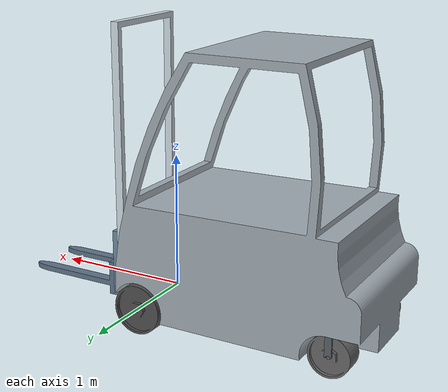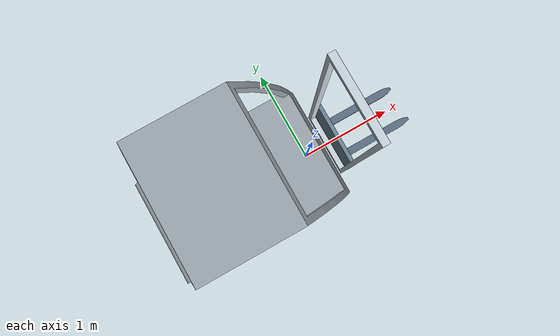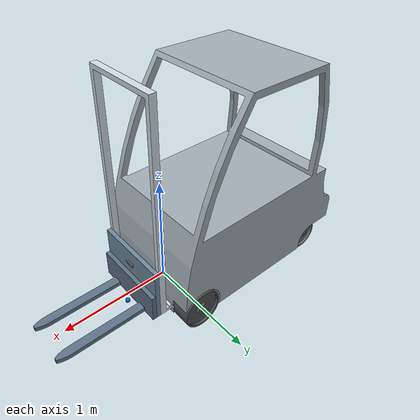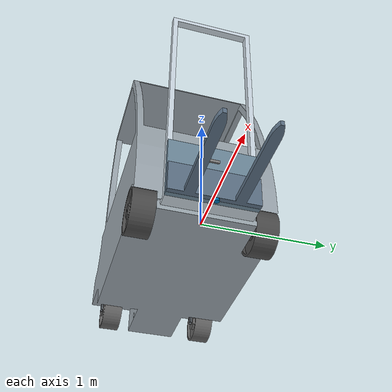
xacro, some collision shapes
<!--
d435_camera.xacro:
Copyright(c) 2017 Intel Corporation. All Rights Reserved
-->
<?xml version="1.0" ?>
<robot name="RX20_16" xmlns:xacro="http://www.ros.org/wiki/xacro">

  <xacro:property name="deg_to_rad" value="0.01745329251994329577"/>

  <!-- Robot base dimensions -->
  <xacro:property name="base_length" value="-1.839" /> <!--fake 0.5 real 0.139-->
  <xacro:property name="base_width" value="1.1" /> <!--fake 0.3 real 0.139-->
  <xacro:property name="base_height" value="0.835" /> <!--fake 0.1 real 0.139-->
  <xacro:property name="base_mass" value="10" />

  <!-- Wheel link dimensions -->
  <xacro:property name="wheel_radius" value="0.10" /> <!--fake 0.1 real 0.139-->
  <xacro:property name="wheel_thickness" value=".13" /> <!--fake 0.08 real 0.139-->
  <xacro:property name="wheel_mass" value="1" />

  <!-- Steering link dimensions -->
  <xacro:property name="steer_radius" value="0.05" />
  <xacro:property name="steer_height" value="0.12" />
  <xacro:property name="steer_thickness" value="0.02" />
  <xacro:property name="steer_mass" value="1" />

  <!-- Axle positions -->
  <xacro:property name="axle_offset" value="0.036175" /> <!--fake 0.05 real 0.035-->
  <xacro:property name="steer_offset" value="0.0254" /> <!--fake 0.02 real 0.139-->

    <xacro:include filename="$(find forklift_simulator)/urdf/RX20_16/inertia.xacro" />
    <xacro:include filename="$(find forklift_simulator)/urdf/RX20_16/base.xacro" />
    <xacro:include filename="$(find forklift_simulator)/urdf/RX20_16/nav_lidar.xacro" />
    <xacro:include filename="$(find forklift_simulator)/urdf/RX20_16/detection_lidar.xacro" />
    <xacro:include filename="$(find forklift_simulator)/urdf/RX20_16/d435_camera.xacro" />
    <xacro:include filename="$(find forklift_simulator)/urdf/RX20_16/inertials.xacro" />
    <xacro:include filename="$(find forklift_simulator)/urdf/RX20_16/loading_forklift_joints.xacro" />
    <xacro:include filename="$(find forklift_simulator)/urdf/RX20_16/rear_steer.xacro" />
    <xacro:include filename="$(find forklift_simulator)/urdf/RX20_16/steer_wheels.xacro" />

    <xacro:camera_d435 name="camera" topics_ns="camera" parent="lift_link" publish_pointcloud="true"> <origin xyz="0.02 0 0.1" rpy="0 0 0" /> </xacro:camera_d435>

    <xacro:nav_lidar name="back"  x="0.4"  y="0.0" z="-0.08" roll="0.0" pitch="0.0" yaw="0" resolution="1"/>

 <xacro:rear_steer
    name="rear"
    parent="base"
    steer_radius="${steer_radius}"
    steer_thickness="${steer_thickness}"
    steer_mass="${steer_mass}"
    base_length="${base_length}"
    base_width="${base_width}"
    axle_offset="${axle_offset}"
    steer_height="${steer_height-.06}">
</xacro:rear_steer>
 <xacro:rear_wheel
    name="front"
    parent="base"
    wheel_radius="${wheel_radius/4}"
    wheel_thickness="${base_width}"
    wheel_mass="${wheel_mass}">
    <origin xyz="0 0 0" rpy="${-90 * deg_to_rad} 0 0"/>
  </xacro:rear_wheel>

   <xacro:steer_wheel name="rear_left"  x_steering="-1.429" y_steering="0.404" z_steering="0.06" radius="0.150" width="0.15" flip="-1" />
   <xacro:steer_wheel name="rear_right" x_steering="-1.429" y_steering="-0.404" z_steering="0.06" radius="0.150" width="0.15" flip="-1" />

    <xacro:front_wheel_lr name="front_right" parent = "base" x_loading="0.0" y_loading="-0.466" z_loading="0.0" radius="0.18" width="0.18" flip="-1" />
    <xacro:front_wheel_lr name="front_left" parent = "base" x_loading="0.0" y_loading="0.466" z_loading="0.0" radius="0.18" width="0.18" flip="-1" />

</robot>

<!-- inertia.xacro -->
<robot xmlns:xacro="http://www.ros.org/wiki/xacro">

    <xacro:macro  name="cylinder_inertia" params="mass r l">
      <inertia  ixx="${mass*(3*r*r+l*l)/12}" ixy = "0" ixz = "0"
                iyy="${mass*(3*r*r+l*l)/12}" iyz = "0"
                izz="${mass*(r*r)/2}" />
    </xacro:macro >

    <xacro:macro name="box_inertia" params="mass x y z">
      <inertia  ixx="${mass*(y*y+z*z)/12}" ixy = "0" ixz = "0"
                iyy="${mass*(x*x+z*z)/12}" iyz = "0"
                izz="${mass*(x*x+y*y)/12}"/>
    </xacro:macro>

    <xacro:macro name="sphere_inertia" params="mass r">
      <inertia
          ixx="${2*mass*r*r/5}" ixy = "0" ixz = "0"
          iyy="${2*mass*r*r/5}" iyz = "0"
          izz="${2*mass*r*r/5}"/>
    </xacro:macro>

</robot>

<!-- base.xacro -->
<robot name="RX20_16" xmlns:xacro="http://www.ros.org/wiki/xacro">

  <link name="base_footprint"/>
  <link name="base_scan"/>

  <link name="base_link">
   <inertial>
    <origin xyz="-0.8 0 0.417" rpy="0 0 0"/>
     <xacro:box_inertia mass="10" x="1.843" y="1.1" z="0.835"/>
    <mass value= "10"/>
    </inertial>

    <collision>
      <origin rpy="0 0 0" xyz="0 0 0"/>
      <geometry>
        <mesh
          filename="$(find forklift_simulator)/urdf/RX20_16/meshes/body.dae" />
      </geometry>
    </collision>
    <visual>
      <origin rpy="0 0 0" xyz="0 0 0"/>
      <geometry>
        <mesh
        filename="$(find forklift_simulator)/urdf/RX20_16/meshes/body.dae" />
      </geometry>
    </visual>
  </link>

  <link name="imu_link"/>
  <joint name="imu_joint" type="fixed">
    <parent link="base_link"/>
    <child link="imu_link"/>
    <origin xyz="0.0 0 0.068" rpy="0 0 0"/>
  </joint>

  <joint name="base_joint" type="fixed">
    <parent link="base_footprint" />
    <child link="base_link" />
    <origin xyz="0.0 0 0.0" rpy="0 0 0" />
    <axis xyz="0 0 1" />
  </joint>

  <joint name="scan" type="fixed">
    <parent link="base_footprint" />
    <child link="base_scan" />
    <origin xyz="0.0 0 0.0" rpy="0 0 0" />
    <axis xyz="0 0 1" />
  </joint>

</robot>

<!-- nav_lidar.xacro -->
<robot name="RX20_16" xmlns:xacro="http://www.ros.org/wiki/xacro">

<xacro:macro name="nav_lidar" params="name x y z roll pitch yaw resolution">

  <link name="${name}_nav_lidar">
      <inertial>
      <origin xyz="0 0 0" rpy="0 0 0"/>
      <xacro:cylinder_inertia mass="0.01" r="0.02" l="0.02" />
      <mass value= "0.01"/>
      </inertial>

      <collision>
      <origin xyz="0 0 0" rpy="0 0 0"/>
      <geometry>
            <cylinder radius="0.02" length="0.02"/>
      </geometry>
      </collision>

      <visual>
      <origin xyz="0 0 0" rpy="0 0 0"/>
      <geometry>
      <cylinder radius="0.02" length="0.02"/>
      </geometry>
      </visual>
  </link>

  <gazebo reference="${name}_nav_lidar"  >
      <sensor name="/scan_${name}_nav_lidar_sensor" type="ray">
        <pose>0 0 0 0 0   0</pose>
        <visualize>false</visualize>
        <update_rate>20</update_rate>
          <ray>
          <scan>
            <horizontal>
              <samples>1440</samples>
                <resolution>1</resolution>
              <min_angle>0</min_angle>
                <max_angle>6.28</max_angle>
            </horizontal>
          </scan>
            <range>
            <min>0.10</min>
            <max>10.0</max>
              <resolution>0.01</resolution>
          </range>
          <noise>
              <type>gaussian</type>
            <mean>0.0</mean>
            <stddev>0.001</stddev>
            </noise>
        </ray>
        <plugin filename="libgazebo_ros_laser.so"   name="gazebo_ros_head_hokuyo_controller">
          <topicName>/RX20_16/scan</topicName>
            <frameName>${name}_nav_lidar</frameName>
            _
          <output_type>sensor_msgs/LaserScan</output_type>
        </plugin>
      </sensor>
    </gazebo>

  <joint name="lidar_joint_${name}" type="fixed">

    <parent link="base_scan" />
    <child link="${name}_nav_lidar" />
    <origin xyz="${x} ${y} ${z}" rpy="${roll} ${pitch} ${yaw}" />
    <axis xyz="0 0 1" />
  </joint>

 </xacro:macro>

</robot>

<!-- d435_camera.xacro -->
<robot name="camera_d435" xmlns:xacro="http://ros.org/wiki/xacro">
  <!--File includes-->
  <xacro:include filename="$(find forklift_simulator)/urdf/RX20_16/d435_sensor.xacro"/>

  <xacro:macro name="camera_d435" params="name:=camera topics_ns:=camera parent *origin publish_pointcloud:=true">
    <xacro:property name="M_PI" value="3.1415926535897931" />

    <!-- The following values are approximate, and the camera node
     publishing TF values with actual calibrated camera extrinsic values -->
    <xacro:property name="d435_cam_depth_to_left_ir_offset" value="0.0"/>
    <xacro:property name="d435_cam_depth_to_right_ir_offset" value="-0.050"/>
    <xacro:property name="d435_cam_depth_to_color_offset" value="0.015"/>

    <!-- The following values model the aluminum peripherial case for the
    D435 camera, with the camera joint represented by the actual
    peripherial camera tripod mount -->
    <xacro:property name="d435_cam_width" value="0.090"/>
    <xacro:property name="d435_cam_height" value="0.025"/>
    <xacro:property name="d435_cam_depth" value="0.02505"/>
    <xacro:property name="d435_cam_mount_from_center_offset" value="0.0149"/>

    <!-- The following offset is relative the the physical D435 camera peripherial
    camera tripod mount -->
    <xacro:property name="d435_cam_depth_px" value="${d435_cam_mount_from_center_offset}"/>
    <xacro:property name="d435_cam_depth_py" value="0.0175"/>
    <xacro:property name="d435_cam_depth_pz" value="${d435_cam_height/2}"/>

    <material name="${name}_aluminum">
    <color rgba="0.5 0.5 0.5 1"/>
    </material>

    <!-- camera body, with origin at bottom screw mount -->
    <joint name="${name}_joint" type="fixed">
      <xacro:insert_block name="origin" />
      <parent link="${parent}"/>
      <child link="${name}_bottom_screw_frame" />
    </joint>
    <link name="${name}_bottom_screw_frame"/>

    <joint name="${name}_link_joint" type="fixed">
      <origin xyz="0 ${d435_cam_depth_py} ${d435_cam_depth_pz}" rpy="0 0 0"/>
      <parent link="${name}_bottom_screw_frame"/>
      <child link="${name}_link" />
    </joint>

    <link name="${name}_link">
      <visual>
      <origin xyz="${d435_cam_mount_from_center_offset} ${-d435_cam_depth_py} 0" rpy="${M_PI/2} 0 ${M_PI/2}"/>
        <geometry>
          <mesh filename="package://forklift_simulator/urdf/RX20_16/meshes/d435.dae" />
        </geometry>
        <material name="${name}_aluminum"/>
      </visual>
      <collision>
        <origin xyz="0 ${-d435_cam_depth_py} 0" rpy="0 0 0"/>
        <geometry>
        <box size="${d435_cam_depth} ${d435_cam_width} ${d435_cam_height}"/>
        </geometry>
      </collision>
      <inertial>
        <!-- The following are not reliable values, and should not be used for modeling -->
        <mass value="0.564" />
        <origin xyz="0 0 0" />
        <inertia ixx="0.003881243" ixy="0.0" ixz="0.0" iyy="0.000498940" iyz="0.0" izz="0.003879257" />
      </inertial>
    </link>

    <!-- camera depth joints and links -->
    <joint name="${name}_depth_joint" type="fixed">
      <origin xyz="0 0 0" rpy="0 0 0"/>
      <parent link="${name}_link"/>
      <child link="${name}_depth_frame" />
    </joint>
    <link name="${name}_depth_frame"/>

    <joint name="${name}_depth_optical_joint" type="fixed">
      <origin xyz="0 0 0" rpy="${-M_PI/2} 0 ${-M_PI/2}" />
      <parent link="${name}_depth_frame" />
      <child link="${name}_depth_optical_frame" />
    </joint>
    <link name="${name}_depth_optical_frame"/>

    <!-- camera left IR joints and links -->
    <joint name="${name}_left_ir_joint" type="fixed">
      <origin xyz="0 ${d435_cam_depth_to_left_ir_offset} 0" rpy="0 0 0" />
      <parent link="${name}_depth_frame" />
      <child link="${name}_left_ir_frame" />
    </joint>
    <link name="${name}_left_ir_frame"/>

    <joint name="${name}_left_ir_optical_joint" type="fixed">
      <origin xyz="0 0 0" rpy="${-M_PI/2} 0 ${-M_PI/2}" />
      <parent link="${name}_left_ir_frame" />
      <child link="${name}_left_ir_optical_frame" />
    </joint>
    <link name="${name}_left_ir_optical_frame"/>

    <!-- camera right IR joints and links -->
    <joint name="${name}_right_ir_joint" type="fixed">
      <origin xyz="0 ${d435_cam_depth_to_right_ir_offset} 0" rpy="0 0 0" />
      <parent link="${name}_depth_frame" />
      <child link="${name}_right_ir_frame" />
    </joint>
    <link name="${name}_right_ir_frame"/>

    <joint name="${name}_right_ir_optical_joint" type="fixed">
      <origin xyz="0 0 0" rpy="${-M_PI/2} 0 ${-M_PI/2}" />
      <parent link="${name}_right_ir_frame" />
      <child link="${name}_right_ir_optical_frame" />
    </joint>
    <link name="${name}_right_ir_optical_frame"/>

    <!-- camera color joints and links -->
    <joint name="${name}_color_joint" type="fixed">
      <origin xyz="0 ${d435_cam_depth_to_color_offset} 0" rpy="0 0 0" />
      <parent link="${name}_depth_frame" />
      <child link="${name}_color_frame" />
    </joint>
    <link name="${name}_color_frame"/>

    <joint name="${name}_color_optical_joint" type="fixed">
      <origin xyz="0 0 0" rpy="${-M_PI/2} 0 ${-M_PI/2}" />
      <parent link="${name}_color_frame" />
      <child link="${name}_color_optical_frame" />
    </joint>
    <link name="${name}_color_optical_frame"/>

    <!-- Realsense Gazebo Plugin -->
    <xacro:gazebo_d435 camera_name="${name}" reference_link="${name}_link" topics_ns="${topics_ns}" depth_optical_frame="${name}_depth_optical_frame" color_optical_frame="${name}_color_optical_frame" infrared1_optical_frame="${name}_left_ir_optical_frame" infrared2_optical_frame="${name}_right_ir_optical_frame" publish_pointcloud="${publish_pointcloud}"/>

  </xacro:macro>
</robot>

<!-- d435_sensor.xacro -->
<!--
License: Apache 2.0. See LICENSE file in root directory.
Copyright(c) 2017 PAL Robotics, S.L. All Rights Reserved

This is the Gazebo URDF model for the Intel RealSense D435 camera
-->

<robot xmlns:xacro="http://ros.org/wiki/xacro">

  <xacro:macro name="gazebo_d435" params="camera_name reference_link topics_ns depth_optical_frame color_optical_frame infrared1_optical_frame infrared2_optical_frame publish_pointcloud:=true" >

    <!-- Load parameters to model's main link-->
    <xacro:property name="deg_to_rad" value="0.01745329251994329577" />
    <gazebo reference="${reference_link}">
      <self_collide>0</self_collide>
      <enable_wind>0</enable_wind>
      <kinematic>0</kinematic>
      <gravity>1</gravity>
      <mu2>1</mu2>
      <fdir1>0 0 0</fdir1>
      <kp>1e+13</kp>
      <kd>1</kd>
      <sensor name="${camera_name}color" type="camera">
        <camera name="${camera_name}">
          <horizontal_fov>${69.4*deg_to_rad}</horizontal_fov>
          <image>
            <width>848</width>
            <height>480</height>
            <format>RGB_INT8</format>
          </image>
          <clip>
            <near>0.1</near>
            <far>100</far>
          </clip>
          <noise>
            <type>gaussian</type>
            <mean>0.0</mean>
            <stddev>0.007</stddev>
          </noise>
        </camera>
        <always_on>1</always_on>
        <update_rate>30</update_rate>
        <visualize>0</visualize>
      </sensor>
      <sensor name="${camera_name}ired1" type="camera">
        <camera name="${camera_name}">
          <horizontal_fov>${85.2*deg_to_rad}</horizontal_fov>
          <image>
            <width>848</width>
            <height>480</height>
            <format>L_INT8</format>
          </image>
          <clip>
            <near>0.1</near>
            <far>100</far>
          </clip>
          <noise>
            <type>gaussian</type>
            <mean>0.0</mean>
            <stddev>0.05</stddev>
          </noise>
        </camera>
        <always_on>1</always_on>
        <update_rate>90</update_rate>
        <visualize>0</visualize>
      </sensor>
      <sensor name="${camera_name}ired2" type="camera">
        <camera name="${camera_name}">
          <horizontal_fov>${85.2*deg_to_rad}</horizontal_fov>
          <image>
            <width>848</width>
            <height>480</height>
            <format>L_INT8</format>
          </image>
          <clip>
            <near>0.1</near>
            <far>100</far>
          </clip>
          <noise>
            <type>gaussian</type>
            <mean>0.0</mean>
            <stddev>0.05</stddev>
          </noise>
        </camera>
        <always_on>1</always_on>
        <update_rate>90</update_rate>
        <visualize>0</visualize>
      </sensor>
      <sensor name="${camera_name}depth" type="depth">
        <camera name="${camera_name}">
          <horizontal_fov>${85.2*deg_to_rad}</horizontal_fov>
          <image>
            <width>848</width>
            <height>480</height>
          </image>
          <clip>
            <near>0.1</near>
            <far>100</far>
          </clip>
          <noise>
            <type>gaussian</type>
            <mean>0.0</mean>
            <stddev>0.100</stddev>
          </noise>
        </camera>
        <always_on>1</always_on>
        <update_rate>90</update_rate>
        <visualize>0</visualize>
      </sensor>
    </gazebo>

    <gazebo>
      <plugin name="${topics_ns}" filename="librealsense_gazebo_plugin.so">
        <prefix>${camera_name}</prefix>
        <depthUpdateRate>30.0</depthUpdateRate>
        <colorUpdateRate>30.0</colorUpdateRate>
        <infraredUpdateRate>30.0</infraredUpdateRate>
        <depthTopicName>depth/image_raw</depthTopicName>
        <depthCameraInfoTopicName>depth/camera_info</depthCameraInfoTopicName>
        <colorTopicName>color/image_raw</colorTopicName>
        <colorCameraInfoTopicName>color/camera_info</colorCameraInfoTopicName>
        <infrared1TopicName>infra1/image_raw</infrared1TopicName>
        <infrared1CameraInfoTopicName>infra1/camera_info</infrared1CameraInfoTopicName>
        <infrared2TopicName>infra2/image_raw</infrared2TopicName>
        <infrared2CameraInfoTopicName>infra2/camera_info</infrared2CameraInfoTopicName>
        <colorOpticalframeName>${color_optical_frame}</colorOpticalframeName>
        <depthOpticalframeName>${depth_optical_frame}</depthOpticalframeName>
        <infrared1OpticalframeName>${infrared1_optical_frame}</infrared1OpticalframeName>
        <infrared2OpticalframeName>${infrared2_optical_frame}</infrared2OpticalframeName>
        <rangeMinDepth>0.2</rangeMinDepth>
        <rangeMaxDepth>10.0</rangeMaxDepth>
        <pointCloud>${publish_pointcloud}</pointCloud>
        <pointCloudTopicName>depth/color/points</pointCloudTopicName>
        <pointCloudCutoff>0.25</pointCloudCutoff>
        <pointCloudCutoffMax>9.0</pointCloudCutoffMax>
      </plugin>
    </gazebo>

  </xacro:macro>
</robot>

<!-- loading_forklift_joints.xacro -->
<robot name="RX20_16" xmlns:xacro="http://www.ros.org/wiki/xacro">

 <link name="tilt_link">
    <inertial>
    <origin xyz="0 0 0" rpy="0 0 0"/>
    <xacro:box_inertia mass="0.1" x="0.2" y="0.1" z="0.05"/>
    <mass value= "0.1"/>
    </inertial>

    <collision >
    <origin xyz="0 0 0" rpy="0 0 0"/>
    <geometry> <mesh filename="$(find forklift_simulator)/urdf/RX20_16/meshes/tilt_link.dae" />
    </geometry>
    </collision>

    <visual>
    <origin xyz="0 0 0" rpy="0 0 0"/>
    <geometry>
          <mesh filename="$(find forklift_simulator)/urdf/RX20_16/meshes/tilt_link.dae" />
    </geometry>
    </visual>
  </link>

  <joint name="tilt_joint" type="revolute">
    <parent link="base_link" />
    <child link="tilt_link" />
    <origin xyz="0.18 0 0.0" rpy="0 0 0" />
    <axis xyz="0 1 0" />
    <limit lower="-0.087" upper="0.105" effort="50" velocity="0.3"/>
     <dynamics damping="10" friction="1"/>
  </joint>

  <link name="lift_link">
    <inertial>
    <origin xyz="0 0 0" rpy="0 0 0"/>
    <xacro:box_inertia mass="0.1" x="0.2" y="0.1" z="0.05"/>
    <mass value= "0.1"/>
    </inertial>

    <collision >
    <origin xyz="0 0 0" rpy="0 0 0"/>
    <geometry> <mesh filename="$(find forklift_simulator)/urdf/RX20_16/meshes/lift_link.dae" />
    </geometry>
    </collision>

    <visual>
    <origin xyz="0 0 0" rpy="0 0 0"/>
    <geometry>
          <mesh filename="$(find forklift_simulator)/urdf/RX20_16/meshes/lift_link.dae" />
    </geometry>
    </visual>
  </link>

  <joint name="lift_joint" type="prismatic">
    <parent link="tilt_link" />
    <child link="lift_link" />
    <origin xyz="0.134 0 0.22" rpy="0 0 0" />
    <axis xyz="0 0 1" />
    <limit lower="-0.2" upper="2" effort="100" velocity="0.3"/>
     <dynamics damping="100.0" friction="1"/>
  </joint>

  <link name="sideshift_link">
    <inertial>
    <origin xyz="0 0 0" rpy="0 0 0"/>
    <xacro:box_inertia mass="0.1" x="0.2" y="0.1" z="0.05"/>
    <mass value= "0.1"/>
    </inertial>

    <collision >
    <origin xyz="0 0 0" rpy="0 0 0"/>
    <geometry> <mesh filename="$(find forklift_simulator)/urdf/RX20_16/meshes/sideshift_link.dae" />
    </geometry>
    </collision>

    <visual>
    <origin xyz="0 0 0" rpy="0 0 0"/>
    <geometry>
          <mesh filename="$(find forklift_simulator)/urdf/RX20_16/meshes/sideshift_link.dae" />
    </geometry>
    </visual>
  </link>

  <joint name="sideshift_joint" type="prismatic">
    <parent link="lift_link" />
    <child link="sideshift_link" />
    <origin xyz="0.06 0 -0.25" rpy="0 0 0" />
    <axis xyz="0 1 0" />
    <limit lower="-0.2" upper="0.2" effort="100" velocity="0.3"/>
     <dynamics damping="10" friction="1"/>
  </joint>

  <transmission name="tran1">
    <type>transmission_interface/SimpleTransmission</type>
    <joint name="tilt_joint">
      <hardwareInterface>hardware_interface/EffortJointInterface</hardwareInterface>
    </joint>
    <actuator name="motor1">
      <hardwareInterface>hardware_interface/EffortJointInterface</hardwareInterface>
      <mechanicalReduction>1</mechanicalReduction>
    </actuator>
  </transmission>

  <transmission name="tran2">
    <type>transmission_interface/SimpleTransmission</type>
    <joint name="lift_joint">
      <hardwareInterface>hardware_interface/EffortJointInterface</hardwareInterface>
    </joint>
    <actuator name="motor2">
      <hardwareInterface>hardware_interface/EffortJointInterface</hardwareInterface>
      <mechanicalReduction>1</mechanicalReduction>
    </actuator>
  </transmission>

  <transmission name="tran3">
    <type>transmission_interface/SimpleTransmission</type>
    <joint name="sideshift_joint">
      <hardwareInterface>hardware_interface/EffortJointInterface</hardwareInterface>
    </joint>
    <actuator name="motor3">
      <hardwareInterface>hardware_interface/EffortJointInterface</hardwareInterface>
      <mechanicalReduction>1</mechanicalReduction>
    </actuator>
  </transmission>

  <gazebo>
    <plugin name="gazebo_ros_control" filename="libgazebo_ros_control.so">
      <robotNamespace>/RX20_16</robotNamespace>
      <robotSimType>gazebo_ros_control/DefaultRobotHWSim</robotSimType>
    </plugin>
  </gazebo>

  <link name='box1'>
    <collision>
      <geometry>
        <box size="0.8 0.08 0.042"/>
      </geometry>
    </collision>
  </link>

  <joint name="pad_joint1" type="fixed">
    <parent link="sideshift_link" />
    <child link="box1" />
    <origin xyz="0.4 0.189 0.02" rpy="0 0 0" />
    <axis xyz="0 0 1" />
  </joint>

  <link name='box2'>
    <collision>
      <geometry>
        <box size="0.8 0.08 0.042"/>
      </geometry>
    </collision>
  </link>

  <joint name="pad_joint2" type="fixed">
    <parent link="sideshift_link" />
    <child link="box2" />
    <origin xyz="0.4 -0.189 0.02" rpy="0 0 0" />
    <axis xyz="0 0 1" />
  </joint>

  <link name='box'>
    <collision>
      <geometry>
        <box size="0.02 0.2 0.1"/>
      </geometry>
    </collision>
  </link>

  <joint name="pad_joint" type="fixed">
    <parent link="sideshift_link" />
    <child link="box" />
    <origin xyz="0.0 0.0 0.05" rpy="0 0 0" />
    <axis xyz="0 0 1" />
  </joint>

</robot>

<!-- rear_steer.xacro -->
<robot name="wheel" xmlns:xacro="http://www.ros.org/wiki/xacro">

<xacro:include filename="$(find forklift_simulator)/urdf/RX20_16/materials.xacro"/>
<xacro:include filename="$(find forklift_simulator)/urdf/RX20_16/inertials.xacro"/>

<xacro:property name="steer_effort" value="100.0"/>
<xacro:property name="steer_velocity" value="5.0"/>
<xacro:property name="steer_limit_deg" value="45.0"/>
<xacro:macro name="rear_steer"
        params="
        name
        parent
        steer_radius
        steer_thickness
        steer_mass
        base_length
        base_width
        axle_offset
        steer_height">
        <link name="${name}_steer_link">
      <visual>
        <origin xyz="0 0 0" rpy="0 0 0"/>
        <geometry>
          <cylinder radius="${steer_radius}" length="${steer_thickness}"/>
        </geometry>
        <material name="yellow" />
      </visual>
      <collision>
        <origin xyz="0 0 0" rpy="0 0 0"/>
        <geometry>
          <cylinder radius="${steer_radius}" length="${steer_thickness}"/>
        </geometry>
      </collision>
      <xacro:solid_cylinder_inertial
          rpy="0 0 0" xyz="0 0 0"
          mass="${steer_mass}"
          radius="${steer_radius}" length="${steer_thickness}" />
    </link>

    <joint name="${name}_steer_joint" type="revolute">
      <parent link="${parent}_link"/>
      <child link="${name}_steer_link"/>
      <origin xyz="-1.429 0 ${steer_height}" rpy="0 0 0"/>
      <axis xyz="0 0 1"/>
      <limit effort="${steer_effort}"
             lower="${-180.0 * deg_to_rad}" upper="${180.0 * deg_to_rad}"
             velocity="${steer_velocity}"/>
    </joint>

    <transmission name="${name}_steer_joint_trans">
      <type>transmission_interface/SimpleTransmission</type>
      <actuator name="${name}_steer_joint_motor">
        <mechanicalReduction>1</mechanicalReduction>
        <hardwareInterface>hardware_interface/PositionJointInterface</hardwareInterface>
      </actuator>
      <joint name="${name}_steer_joint">
        <hardwareInterface>hardware_interface/PositionJointInterface</hardwareInterface>
      </joint>
    </transmission>

    <gazebo reference="${name}_steer_link">
      <material>Gazebo/Yellow</material>
    </gazebo>

    </xacro:macro>

    <xacro:macro name="rear_wheel"
    params="
      name
      parent
      wheel_radius
      wheel_thickness
      wheel_mass
      *origin">
    <link name="${name}_wheel_link">
      <visual>
        <origin xyz="0 0 0" rpy="0 0 0"/>
        <geometry>
          <cylinder radius="${wheel_radius}" length="${wheel_thickness}"/>
        </geometry>
        <material name="yellow" />
      </visual>
      <collision>
        <origin xyz="0 0 0" rpy="0 0 0"/>
        <geometry>
          <cylinder radius="${wheel_radius}" length="${wheel_thickness}"/>
        </geometry>
      </collision>
      <xacro:solid_cylinder_inertial
          rpy="0 0 0" xyz="0 0 0"
          mass="${wheel_mass}"
          radius="${wheel_radius}" length="${wheel_thickness}" />
    </link>

    <joint name="${name}_wheel_joint" type="continuous">
      <parent link="${parent}_link"/>
      <child link="${name}_wheel_link"/>
      <xacro:insert_block name="origin"/>
      <axis xyz="0 0 1"/>
    </joint>

    <transmission name="${name}_wheel_joint_trans">
      <type>transmission_interface/SimpleTransmission</type>
      <actuator name="${name}_wheel_joint_motor">
        <mechanicalReduction>1</mechanicalReduction>
        <hardwareInterface>hardware_interface/VelocityJointInterface</hardwareInterface>
      </actuator>
      <joint name="${name}_wheel_joint">
        <hardwareInterface>hardware_interface/VelocityJointInterface</hardwareInterface>
      </joint>
    </transmission>

    <gazebo reference="${name}_wheel_link">
      <material>Gazebo/Yellow</material>
    </gazebo>
  </xacro:macro>

   <xacro:macro name="rear_wheel_lr"
    params="
      name
      parent
      reflect
      x_steering
      y_steering
      z_steering
      wheel_radius
      wheel_thickness
      wheel_mass
      steer_radius
      steer_thickness
      steer_mass
      base_length
      base_width
      flip
      axle_offset
      steer_height">
    <link name="${name}_steer_link">
      <visual>
        <origin xyz="0 0 0" rpy="0 0 0"/>
        <geometry>
          <cylinder radius="${steer_radius}" length="${steer_thickness}"/>
        </geometry>
        <material name="blue" />
      </visual>
      <collision>
        <origin xyz="0 0 0" rpy="0 0 0"/>
        <geometry>
          <cylinder radius="${steer_radius}" length="${steer_thickness}"/>
        </geometry>
      </collision>
      <xacro:solid_cylinder_inertial
          rpy="0 0 0" xyz="0 0 0"
          mass="${steer_mass}"
          radius="${steer_radius}" length="${steer_thickness}" />
    </link>

    <joint name="${name}_steer_joint" type="revolute">
      <parent link="${parent}_link"/>
      <child link="${name}_steer_link"/>
      <origin xyz="${x_steering} ${y_steering} ${z_steering }" rpy="0 0 0" />
      <axis xyz="0 0 ${1*flip}"/>
      <limit effort="${steer_effort}"
             lower="${steer_limit_deg * deg_to_rad * -1.0}" upper="${steer_limit_deg * deg_to_rad}"
             velocity="${steer_velocity}"/>
    </joint>

    <link name="${name}_wheel_link">
      <visual>
        <origin xyz="0 0 0" rpy="0 0 0"/>
        <geometry>
          <cylinder radius="${wheel_radius}" length="${wheel_thickness}"/>
        </geometry>
        <material name="red" />
      </visual>
      <collision>
        <origin xyz="0 0 0" rpy="0 0 0"/>
        <geometry>
          <cylinder radius="${wheel_radius}" length="${wheel_thickness}"/>
        </geometry>
      </collision>
      <xacro:solid_cylinder_inertial
          rpy="0 0 0" xyz="0 0 0"
          mass="${wheel_mass}"
          radius="${wheel_radius}" length="${wheel_thickness}" />
    </link>

    <joint name="${name}_wheel_joint" type="continuous">
      <parent link="${name}_steer_link"/>
      <child link="${name}_wheel_link"/>
      <origin xyz="0 0 ${-steer_height}" rpy="${-90 * deg_to_rad} 0 0"/>
      <axis xyz="0 0 1"/>
    </joint>

    <transmission name="${name}_steer_joint_trans">
      <type>transmission_interface/SimpleTransmission</type>
      <actuator name="${name}_steer_joint_motor">
        <mechanicalReduction>1</mechanicalReduction>
        <hardwareInterface>hardware_interface/EffortJointInterface</hardwareInterface>
      </actuator>
      <joint name="${name}_steer_joint">
        <hardwareInterface>hardware_interface/EffortJointInterface</hardwareInterface>
      </joint>
    </transmission>

    <transmission name="${name}_wheel_joint_trans">
      <type>transmission_interface/SimpleTransmission</type>
      <actuator name="${name}_wheel_joint_motor">
        <mechanicalReduction>1</mechanicalReduction>
        <hardwareInterface>hardware_interface/EffortJointInterface</hardwareInterface>
      </actuator>
      <joint name="${name}_wheel_joint">
        <hardwareInterface>hardware_interface/EffortJointInterface</hardwareInterface>
      </joint>
    </transmission>

    <gazebo reference="${name}_steer_link">
      <material>Gazebo/Blue</material>
    </gazebo>

    <gazebo reference="${name}_wheel_link">
      <material>Gazebo/Red</material>
    </gazebo>
  </xacro:macro>

   <xacro:macro name="front_wheel_lr" params="name parent x_loading y_loading z_loading radius width flip">

    <link name="wheel_${name}_driving_link">
      <inertial>
      <origin xyz="0 0 0" rpy="0 0 0"/>
      <xacro:cylinder_inertia mass="1" r="${radius}" l="${width}" />
      <mass value= "1"/>
      </inertial>

      <collision >
        <origin xyz="0 0 0" rpy="0 0 0"/>
        <geometry>
            <cylinder radius="${radius}" length="${width}"/>
        </geometry>
      </collision>

      <visual>
      <origin xyz="0 0 0" rpy="0 0 0"/>
      <geometry>
          <mesh filename="$(find forklift_simulator)/urdf/RX20_16/meshes/front_wheel.dae" />
      </geometry>
      </visual>
    </link>

    <joint name="wheel_${name}_driving_joint" type="continuous">
      <parent link="${parent}_link" />
      <child link="wheel_${name}_driving_link" />
      <origin xyz="${x_loading} ${y_loading} ${z_loading}" rpy="1.57 0 0" />
      <axis xyz="0 0 ${1*flip}" />
      <limit effort="100" velocity="100"/>
      <dynamics damping="0.1" friction="2.0"/>
    </joint>

    <transmission name="trans_dynamic_${name}">
      <type>transmission_interface/SimpleTransmission</type>
      <joint name="wheel_${name}_driving_joint">
        <hardwareInterface>hardware_interface/EffortJointInterface</hardwareInterface>
      </joint>
      <actuator name="motor_dynamic_wheel_${name}">
        <hardwareInterface>hardware_interface/EffortJointInterface</hardwareInterface>
        <mechanicalReduction>1</mechanicalReduction>
      </actuator>
    </transmission>

    <gazebo reference="wheel_${name}_driving_link">
        <mu1>1.0</mu1>
        <mu2>1.0</mu2>
        <kp>1000000000.0</kp>
        <kd>1000.0</kd>
        <minDepth>0.002</minDepth>
        <maxVel>0</maxVel>
      </gazebo>

  </xacro:macro>

</robot>

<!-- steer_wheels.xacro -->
<robot name="RX20_16" xmlns:xacro="http://www.ros.org/wiki/xacro">

<xacro:macro name="steer_wheel" params="name x_steering y_steering z_steering radius width flip">

  <link name="${name}_steer_link">
    <inertial>
    <origin xyz="0 0 0.1125" rpy="0 0 0"/>
    <xacro:cylinder_inertia mass="1" r="0.05" l="0.225" />
    <mass value= "1"/>
    </inertial>

    <collision >
    <origin xyz="0 0 0" rpy="0 0 0"/>
    <geometry>
        <mesh filename="$(find forklift_simulator)/urdf/RX20_16/meshes/steering_rod.dae" />
    </geometry>
    </collision>

    <visual >
    <origin xyz="0 0 0" rpy="0 0 0"/>
    <geometry>
        <mesh filename="$(find forklift_simulator)/urdf/RX20_16/meshes/steering_rod.dae" />
    </geometry>
    </visual>
  </link>

    <joint name="${name}_steer_joint" type="revolute">
      <parent link="base_link"/>
      <child link="${name}_steer_link"/>
    <origin xyz="${x_steering} ${y_steering} ${z_steering }" rpy="0 0 1.57" />
    <axis xyz="0 0 ${1*flip}" />
    <limit lower="-1.0" upper="1.0" effort="30" velocity="0.3"/>
     <dynamics damping="1" friction="1"/>
  </joint>

  <link name="${name}_wheel_link">
    <inertial>
    <origin xyz="0 0 0" rpy="0 0 0"/>
    <xacro:cylinder_inertia mass="0.5" r="${radius}" l="${width}" />
    <mass value= "0.5"/>
    </inertial>

    <collision >
      <origin xyz="0 0 0" rpy="0 0 0"/>
      <geometry>
           <cylinder radius="${radius}" length="${width}"/>
      </geometry>
    </collision>

    <visual>
    <origin xyz="0 0 0" rpy="0 0 0"/>
    <geometry>
        <mesh filename="$(find forklift_simulator)/urdf/RX20_16/meshes/rear_wheel.dae" />
    </geometry>
    </visual>
  </link>

  <joint name="${name}_wheel_joint" type="continuous">
      <parent link="${name}_steer_link"/>
      <child link="${name}_wheel_link"/>
    <origin xyz=" 0 0 -0.09" rpy="0 1.57 0"/>
    <axis xyz="0 0 1"/>
        <limit effort="10" velocity="10"/>
     <dynamics damping="0.01" friction="0.3"/>
  </joint>

  <transmission name="trans_steering_${name}">
    <type>transmission_interface/SimpleTransmission</type>
    <joint name="${name}_steer_joint">
      <hardwareInterface>hardware_interface/EffortJointInterface</hardwareInterface>
    </joint>
    <actuator name="${name}_steer_joint_motor">
      <hardwareInterface>hardware_interface/EffortJointInterface</hardwareInterface>
      <mechanicalReduction>1</mechanicalReduction>
    </actuator>
  </transmission>

  <gazebo reference="wheel_${name}_link">
			<mu1>1</mu1>
			<mu2>1</mu2>
			<kp>1000000000.0</kp>
			<kd>1000.0</kd>
			<minDepth>0.002</minDepth>
			<maxVel>0</maxVel>
		</gazebo>

 </xacro:macro>

</robot>
